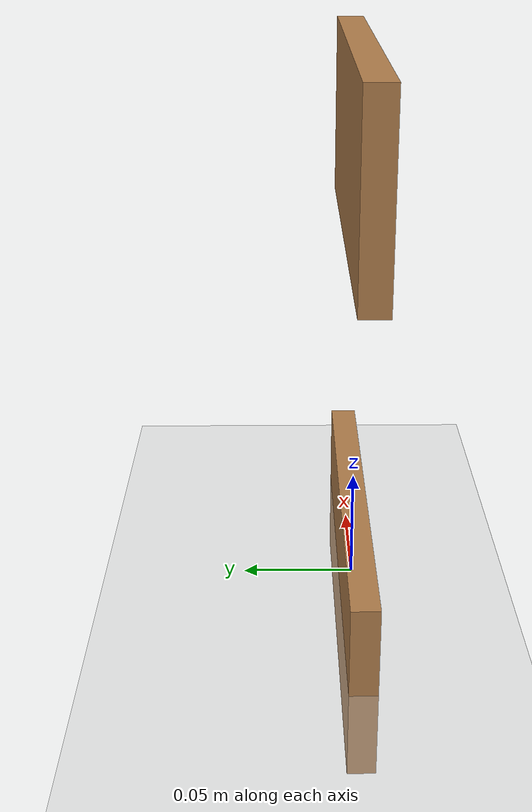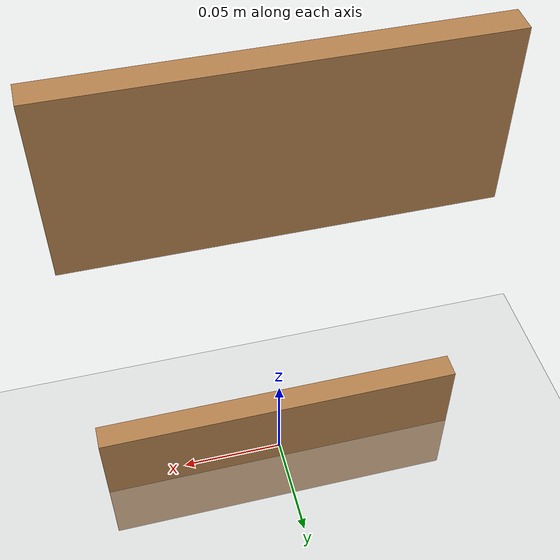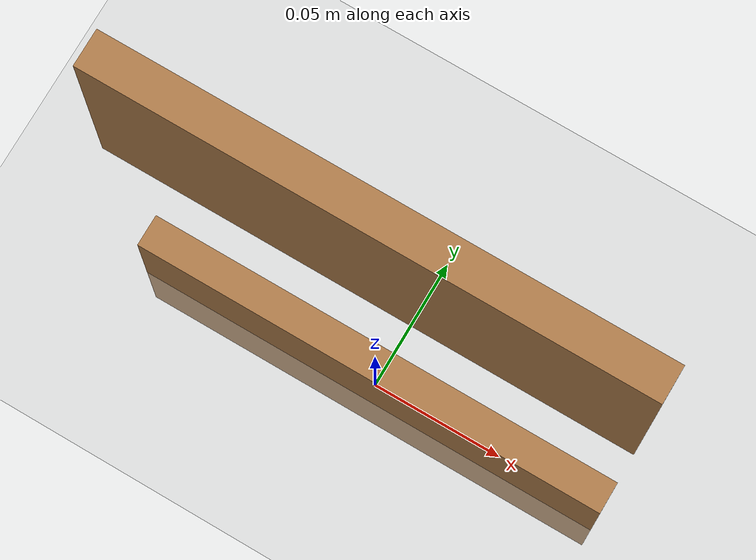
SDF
<?xml version="1.0" ?>
<sdf version="1.5">
  <world name="TestMaze">
    <!-- A global light source -->
    <include>
      <uri>model://sun</uri>
    </include>
    <!-- A ground plane -->
    <include>
      <uri>model://ground_plane</uri>
    </include>

    <include>
      <uri>model://maze_wall</uri>
      <name>block1</name>
      <pose>0 0 0 0 0 0</pose>
    </include>

    <include>
      <uri>model://maze_wall</uri>
      <name>block2</name>
      <pose>0 0 .2 0 0 0</pose>
    </include>

  </world>
</sdf>

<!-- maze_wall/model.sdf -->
<sdf version="1.5">
  <model name="maze_wall">
    <static>true</static>
    <link name="link">
      <pose>0 0 0 0 0 0</pose>
      <inertial>
        <mass>1000</mass>
        <inertia>
          <ixx>0.0008611666666666669</ixx>
          <ixy>0</ixy>
          <ixz>0</ixz>
          <iyy>0.0008611666666666669</iyy>
          <iyz>0</iyz>
          <izz>0.0008611666666666669</izz>
        </inertia>
      </inertial>

      <collision name="collision">
        <geometry>
          <box>
            <size>.18 .012 .050</size>
          </box>
        </geometry>
        <surface>
          <contact>
            <!-- Red Pine coefficients for longitudinal axis of the wood
                 according to:
                 http://www.fpl.fs.fed.us/documnts/fplgtr/fplgtr113/ch04.pdf -->
            <poissons_ratio>0.347</poissons_ratio>
            <elastic_modulus>8.8e+09</elastic_modulus>
            <ode>
              <kp>1000000</kp>
              <kd>100</kd>
              <max_vel>100.0</max_vel>
              <min_depth>0.0001</min_depth>
            </ode>
          </contact>
          <friction>
            <torsional>
              <coefficient>1.0</coefficient>
              <use_patch_radius>0</use_patch_radius>
              <surface_radius>0.01</surface_radius>
            </torsional>
          </friction>
        </surface>
      </collision>

      <visual name="visual">
        <geometry>
          <box>
            <size>.18 .012 .080</size>
          </box>
        </geometry>
        <material>
          <script>
            <uri>file://media/materials/scripts/gazebo.material</uri>
            <name>Gazebo/Wood</name>
          </script>
        </material>
      </visual>

    </link>
  </model>
</sdf>
